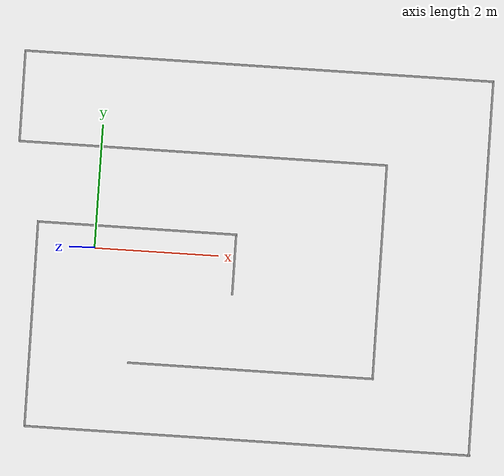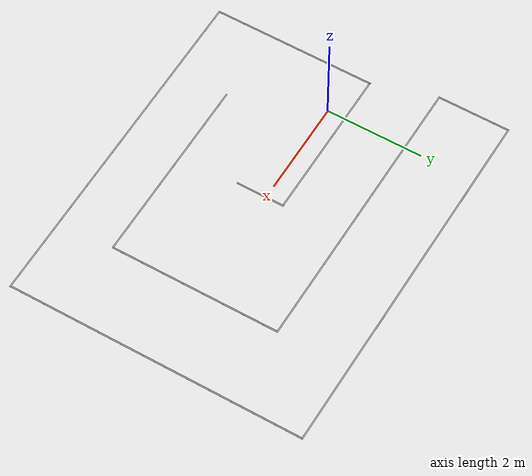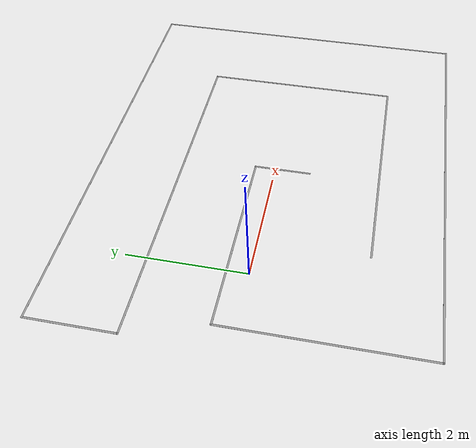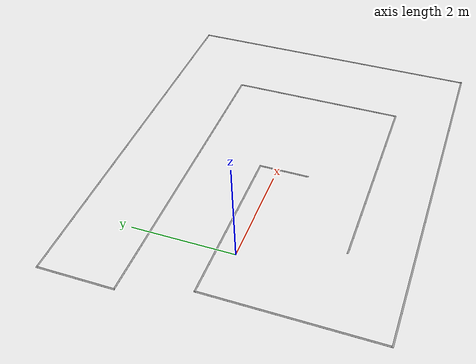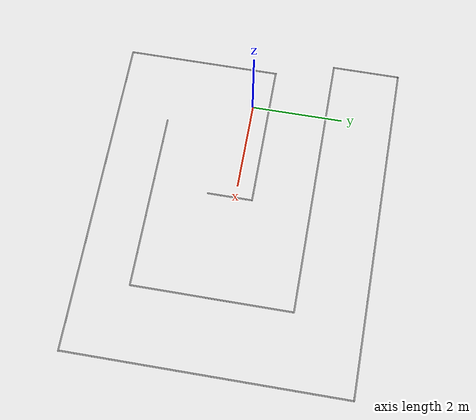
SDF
<?xml version='1.0'?>
<sdf version='1.7'>
  <model name='line'>
    <pose>2.46847 0.079586 0 0 -0 0</pose>
    <link name='Wall_38'>
      <collision name='Wall_38_Collision'>
        <geometry>
          <box>
            <size>4 0.03 0.001</size>
          </box>
        </geometry>
        <pose>0 0 0.0005 0 -0 0</pose>
      </collision>
      <visual name='Wall_38_Visual'>
        <pose>0 0 0.0005 0 -0 0</pose>
        <geometry>
          <box>
            <size>4 0.03 0.001</size>
          </box>
        </geometry>
        <material>
          <script>
            <uri>file://media/materials/scripts/gazebo.material</uri>
            <name>Gazebo/Grey</name>
          </script>
          <ambient>1 1 1 1</ambient>
        </material>
        <meta>
          <layer>0</layer>
        </meta>
      </visual>
      <pose>0.177702 -1.90181 0 0 -0 0</pose>
    </link>
    <link name='Wall_39'>
      <collision name='Wall_39_Collision'>
        <geometry>
          <box>
            <size>3.5 0.03 0.001</size>
          </box>
        </geometry>
        <pose>0 0 0.0005 0 -0 0</pose>
      </collision>
      <visual name='Wall_39_Visual'>
        <pose>0 0 0.0005 0 -0 0</pose>
        <geometry>
          <box>
            <size>3.5 0.03 0.001</size>
          </box>
        </geometry>
        <material>
          <script>
            <uri>file://media/materials/scripts/gazebo.material</uri>
            <name>Gazebo/Grey</name>
          </script>
          <ambient>1 1 1 1</ambient>
        </material>
        <meta>
          <layer>0</layer>
        </meta>
      </visual>
      <pose>2.1627 -0.166809 0 0 -0 1.5708</pose>
    </link>
    <link name='Wall_40'>
      <collision name='Wall_40_Collision'>
        <geometry>
          <box>
            <size>6 0.03 0.001</size>
          </box>
        </geometry>
        <pose>0 0 0.0005 0 -0 0</pose>
      </collision>
      <visual name='Wall_40_Visual'>
        <pose>0 0 0.0005 0 -0 0</pose>
        <geometry>
          <box>
            <size>6 0.03 0.001</size>
          </box>
        </geometry>
        <material>
          <script>
            <uri>file://media/materials/scripts/gazebo.material</uri>
            <name>Gazebo/Grey</name>
          </script>
          <ambient>1 1 1 1</ambient>
        </material>
        <meta>
          <layer>0</layer>
        </meta>
      </visual>
      <pose>-0.822298 1.56819 0 0 -0 3.14159</pose>
    </link>
    <link name='Wall_41'>
      <collision name='Wall_41_Collision'>
        <geometry>
          <box>
            <size>1.5 0.03 0.001</size>
          </box>
        </geometry>
        <pose>0 0 0.0005 0 -0 0</pose>
      </collision>
      <visual name='Wall_41_Visual'>
        <pose>0 0 0.0005 0 -0 0</pose>
        <geometry>
          <box>
            <size>1.5 0.03 0.001</size>
          </box>
        </geometry>
        <material>
          <script>
            <uri>file://media/materials/scripts/gazebo.material</uri>
            <name>Gazebo/Grey</name>
          </script>
          <ambient>1 1 1 1</ambient>
        </material>
        <meta>
          <layer>0</layer>
        </meta>
      </visual>
      <pose>-3.8073 2.30319 0 0 -0 1.5708</pose>
    </link>
    <link name='Wall_42'>
      <collision name='Wall_42_Collision'>
        <geometry>
          <box>
            <size>7.62261 0.03 0.001</size>
          </box>
        </geometry>
        <pose>0 0 0.0005 0 -0 0</pose>
      </collision>
      <visual name='Wall_42_Visual'>
        <pose>0 0 0.0005 0 -0 0</pose>
        <geometry>
          <box>
            <size>7.62261 0.03 0.001</size>
          </box>
        </geometry>
        <material>
          <script>
            <uri>file://media/materials/scripts/gazebo.material</uri>
            <name>Gazebo/Grey</name>
          </script>
          <ambient>1 1 1 1</ambient>
        </material>
        <meta>
          <layer>0</layer>
        </meta>
      </visual>
      <pose>-0.010994 3.03819 0 0 -0 0</pose>
    </link>
    <link name='Wall_43'>
      <collision name='Wall_43_Collision'>
        <geometry>
          <box>
            <size>6.10641 0.03 0.001</size>
          </box>
        </geometry>
        <pose>0 0 0.0005 0 -0 0</pose>
      </collision>
      <visual name='Wall_43_Visual'>
        <pose>0 0 0.0005 0 -0 0</pose>
        <geometry>
          <box>
            <size>6.10641 0.03 0.001</size>
          </box>
        </geometry>
        <material>
          <script>
            <uri>file://media/materials/scripts/gazebo.material</uri>
            <name>Gazebo/Grey</name>
          </script>
          <ambient>1 1 1 1</ambient>
        </material>
        <meta>
          <layer>0</layer>
        </meta>
      </visual>
      <pose>3.79806 0 0 0 -0 -1.56995</pose>
    </link>
    <link name='Wall_44'>
      <collision name='Wall_44_Collision'>
        <geometry>
          <box>
            <size>7.25 0.03 0.001</size>
          </box>
        </geometry>
        <pose>0 0 0.0005 0 -0 0</pose>
      </collision>
      <visual name='Wall_44_Visual'>
        <pose>0 0 0.0005 0 -0 0</pose>
        <geometry>
          <box>
            <size>7.25 0.03 0.001</size>
          </box>
        </geometry>
        <material>
          <script>
            <uri>file://media/materials/scripts/gazebo.material</uri>
            <name>Gazebo/Grey</name>
          </script>
          <ambient>1 1 1 1</ambient>
        </material>
        <meta>
          <layer>0</layer>
        </meta>
      </visual>
      <pose>0.197298 -3.03819 0 0 -0 3.14159</pose>
    </link>
    <link name='Wall_45'>
      <collision name='Wall_45_Collision'>
        <geometry>
          <box>
            <size>3.35548 0.03 0.001</size>
          </box>
        </geometry>
        <pose>0 0 0.0005 0 -0 0</pose>
      </collision>
      <visual name='Wall_45_Visual'>
        <pose>0 0 0.0005 0 -0 0</pose>
        <geometry>
          <box>
            <size>3.35548 0.03 0.001</size>
          </box>
        </geometry>
        <material>
          <script>
            <uri>file://media/materials/scripts/gazebo.material</uri>
            <name>Gazebo/Grey</name>
          </script>
          <ambient>1 1 1 1</ambient>
        </material>
        <meta>
          <layer>0</layer>
        </meta>
      </visual>
      <pose>-3.41962 -1.37545 0 0 -0 1.57096</pose>
    </link>
    <link name='Wall_46'>
      <collision name='Wall_46_Collision'>
        <geometry>
          <box>
            <size>3.25 0.03 0.001</size>
          </box>
        </geometry>
        <pose>0 0 0.0005 0 -0 0</pose>
      </collision>
      <visual name='Wall_46_Visual'>
        <pose>0 0 0.0005 0 -0 0</pose>
        <geometry>
          <box>
            <size>3.25 0.03 0.001</size>
          </box>
        </geometry>
        <material>
          <script>
            <uri>file://media/materials/scripts/gazebo.material</uri>
            <name>Gazebo/Grey</name>
          </script>
          <ambient>1 1 1 1</ambient>
        </material>
        <meta>
          <layer>0</layer>
        </meta>
      </visual>
      <pose>-1.80989 0.28511 0 0 -0 0</pose>
    </link>
    <link name='Wall_47'>
      <collision name='Wall_47_Collision'>
        <geometry>
          <box>
            <size>1.00095 0.03 0.001</size>
          </box>
        </geometry>
        <pose>0 0 0.0005 0 -0 0</pose>
      </collision>
      <visual name='Wall_47_Visual'>
        <pose>0 0 0.0005 0 -0 0</pose>
        <geometry>
          <box>
            <size>1.00095 0.03 0.001</size>
          </box>
        </geometry>
        <material>
          <script>
            <uri>file://media/materials/scripts/gazebo.material</uri>
            <name>Gazebo/Grey</name>
          </script>
          <ambient>1 1 1 1</ambient>
        </material>
        <meta>
          <layer>0</layer>
        </meta>
      </visual>
      <pose>-0.199894 -0.198191 0 0 -0 -1.5708</pose>
    </link>
    <static>1</static>
  </model>
</sdf>
